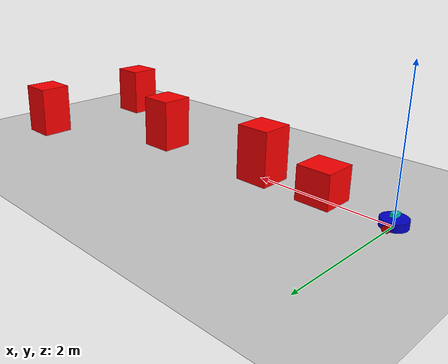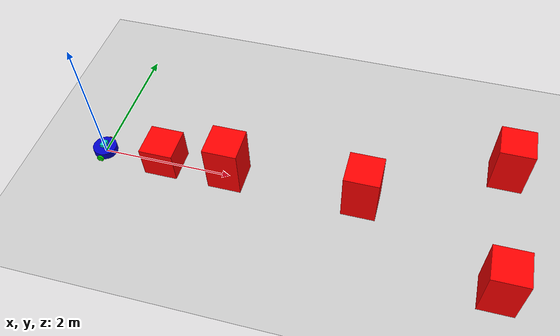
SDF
<?xml version="1.0" ?>
<sdf version="1.8">
	<world name="car_world">
		<physics name="1ms" type="gz-physics">
			<max_step_size>0.001</max_step_size>
			<real_time_factor>1.0</real_time_factor>
		</physics>

		<!-- Add Plugins -->
		<plugin name="gz::sim::systems::Physics" filename="gz-sim-physics-system"/>
		<plugin name="gz::sim::systems::SceneBroadcaster" filename="gz-sim-scene-broadcaster-system"/>
		<plugin filename="libgz-sim-sensors-system.so" name="gz::sim::systems::Sensors">
			<render_engine>ogre2</render_engine>
		</plugin>

		<light type="directional" name="sun">
			<cast_shadows>true</cast_shadows>
			<pose>0 0 10 0 0 0</pose>
			<diffuse>0.8 0.8 0.8 1</diffuse>
			<specular>0.2 0.2 0.2 1</specular>
			<attenuation>
				<range>1000</range>
				<constant>0.9</constant>
				<linear>0.01</linear>
				<quadratic>0.001</quadratic>
			</attenuation>
			<direction>-0.5 0.1 -0.9</direction>
		</light>

		<model name="ground_plane">
			<static>true</static>
			<link name="link">
				<collision name="collision">
					<geometry>
						<plane>
							<normal>0 0 1</normal>
						</plane>
					</geometry>
				</collision>
				<visual name="visual">
					<geometry>
						<plane>
							<normal>0 0 1</normal>
							<size>100 100</size>
						</plane>
					</geometry>
					<material>
						<ambient>0.8 0.8 0.8 1</ambient>
						<diffuse>0.8 0.8 0.8 1</diffuse>
						<specular>0.8 0.8 0.8 1</specular>
					</material>
				</visual>
			</link>
		</model>
		<model name='test_box'>
  <pose>1 0 0.25 0 0 0</pose>
  <link name='link'>
    <collision name='collision'>
      <geometry>
        <box><size>0.5 0.5 0.5</size></box>
      </geometry>
    </collision>
    <visual name='visual'>
      <geometry>
        <box><size>0.5 0.5 0.5</size></box>
      </geometry>
      <material>
        <ambient>1 0 0 1</ambient>
      </material>
    </visual>
  </link>
</model>
<model name="obstacle1">
  <pose>2 0 0.3 0 0 0</pose>
  <link name="link">
    <collision name="collision">
      <geometry><box><size>0.5 0.5 1</size></box></geometry>
    </collision>
    <visual name="visual">
      <geometry><box><size>0.5 0.5 1</size></box></geometry>
      <material><ambient>1 0 0 1</ambient></material>
    </visual>
  </link>
</model>

<model name="obstacle2">
  <pose>4 0 0.3 0 0 0</pose>
  <link name="link">
    <collision name="collision">
      <geometry><box><size>0.5 0.5 1</size></box></geometry>
    </collision>
    <visual name="visual">
      <geometry><box><size>0.5 0.5 1</size></box></geometry>
      <material><ambient>1 0 0 1</ambient></material>
    </visual>
  </link>
</model>

<model name="obstacle3">
  <pose>6 1 0.3 0 0 0</pose>
  <link name="link">
    <collision name="collision">
      <geometry><box><size>0.5 0.5 1</size></box></geometry>
    </collision>
    <visual name="visual">
      <geometry><box><size>0.5 0.5 1</size></box></geometry>
      <material><ambient>1 0 0 1</ambient></material>
    </visual>
  </link>
</model>

<model name="obstacle4">
  <pose>6 -1 0.3 0 0 0</pose>
  <link name="link">
    <collision name="collision">
      <geometry><box><size>0.5 0.5 1</size></box></geometry>
    </collision>
    <visual name="visual">
      <geometry><box><size>0.5 0.5 1</size></box></geometry>
      <material><ambient>1 0 0 1</ambient></material>
    </visual>
  </link>
</model>

		<!-- Use include tag to include the qbot model from the description package -->
		<include>
			<uri>/home/senadi/Desktop/final-project-self-name/ros_project_ws/src/qbot_description/sdf/qbot.sdf</uri>
			<pose>0 0 0 0 0 0</pose>
			<name>qbot</name>
		</include>

	</world>
</sdf>

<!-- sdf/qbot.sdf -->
<sdf version="1.8">
    <model name='qbot' canonical_link='base_link'>

        <!-- ROS2 Control Plugin -->
<plugin name="gz_ros2_control::GazeboSimROS2ControlPlugin" filename="libgz_ros2_control-system.so">

    <parameters>/home/senadi/Desktop/lab-06-SenadiF/CS3340-Workspace/src/qbot_description/config/qbot_controllers.yaml</parameters>

  <ros2_control name="qbot_system" type="system">

    <hardware>
      <plugin>gz_ros2_control/GazeboSimSystem</plugin>
    </hardware>

<joint name="wheel_left_joint">
            <command_interface name="velocity">
                <param name="min">-10</param>
                <param name="max">10</param>
            </command_interface>
            <state_interface name="position"/>
            <state_interface name="velocity"/>
        </joint>

        <joint name="wheel_right_joint">
            <command_interface name="velocity">
                <param name="min">-10</param>
                <param name="max">10</param>
            </command_interface>
            <state_interface name="position"/>
            <state_interface name="velocity"/>
        </joint>
</ros2_control>

</plugin>

  <pose>0 0 0 0 0 0</pose>

        <!-- Base -->
        <link name='base_link'>
            <pose>0 0 0.05949 0 0 0</pose>
            <inertial>
                <!-- TODO: Add mass-->
                <mass>2.4</mass>
                <inertia>
                    <ixx>0.019995</ixx>
                    <ixy>0</ixy>
                    <ixz>0</ixz>
                    <iyy>0.019995</iyy>
                    <iyz>0</iyz>
                    <izz>0.03675</izz>
                </inertia>
            </inertial>
            <visual name='base_visual'>
                <!-- TODO: Add geometry-->
                <geometry>
                    <cylinder>
                        <radius>0.178</radius>
                        <length>0.10938</length>
                    </cylinder>
                </geometry>
                <material>
                    <ambient>0.0 0.0 0.8 1</ambient>
                    <diffuse>0.0 0.0 0.8 1</diffuse>
                    <specular>1 1 1 1</specular>
                </material>
            </visual>
            <!-- TODO: Add collision geometry-->
            <collision name='base_collision'>
                <geometry>
                    <cylinder>
                        <radius>0.178</radius>
                        <length>0.10938</length>
                    </cylinder>
                </geometry>
            </collision>
        </link>

        <!-- Left wheel -->
        <link name='wheel_left_link'>
            <pose relative_to='base_link'>0 0.193 -0.0245 -1.57079632679 0 0</pose>
            <inertial>
                <!-- TODO: Add mass-->
                <mass>0.01</mass>
                <inertia>
                    <ixx>0.001</ixx>
                    <ixy>0</ixy>
                    <ixz>0</ixz>
                    <iyy>0.001</iyy>
                    <iyz>0</iyz>
                    <izz>0.001</izz>
                </inertia>
            </inertial>
            <visual name='wheel_left_visual'>
                <!-- TODO: Add geometry-->
                <geometry>
                    <cylinder>
                        <radius>0.05</radius>
                        <length>0.03</length>
                    </cylinder>
                </geometry>
                <material>
                    <ambient>0.8 0.0 0.0 1</ambient>
                    <diffuse>0.8 0.0 0.0 1</diffuse>
                    <specular>1 1 1 1</specular>
                </material>
            </visual>
            <!-- TODO: Add collision geometry-->
            <collision name='wheel_left_collision'>
                <geometry>
                    <cylinder>
                        <radius>0.05</radius>
                        <length>0.03</length>
                    </cylinder>
                </geometry>
            </collision>
        </link>

        <!-- Right wheel -->
        <link name='wheel_right_link'>
            <pose relative_to='base_link'>0 -0.193 -0.0245 -1.57079632679 0 0</pose>
            <inertial>
                <!-- TODO: Add mass-->
                <mass>0.01</mass>
                <inertia>
                    <ixx>0.001</ixx>
                    <ixy>0</ixy>
                    <ixz>0</ixz>
                    <iyy>0.001</iyy>
                    <iyz>0</iyz>
                    <izz>0.001</izz>
                </inertia>
            </inertial>
            <visual name='wheel_right_visual'>
                <!-- TODO: Add geometry-->
                <geometry>
                    <cylinder>
                        <radius>0.05</radius>
                        <length>0.03</length>
                    </cylinder>
                </geometry>
                <material>
                    <ambient>0.0 0.8 0.0 1</ambient>
                    <diffuse>0.0 0.8 0.0 1</diffuse>
                    <specular>1 1 1 1</specular>
                </material>
            </visual>
            <!-- TODO: Add collision geometry-->
            <collision name='wheel_right_collision'>
                <geometry>
                    <cylinder>
                        <radius>0.05</radius>
                        <length>0.03</length>
                    </cylinder>
                </geometry>
            </collision>
        </link>

        <!-- Front caster -->
        <link name='caster_front_link'>
            <pose relative_to='base_link'>0.115 0 -0.0485 -1.57079632679 0 0</pose>
            <inertial>
                <!-- TODO: Add mass-->
                <mass>0.01</mass>
                <inertia>
                    <ixx>0.001</ixx>
                    <ixy>0</ixy>
                    <ixz>0</ixz>
                    <iyy>0.001</iyy>
                    <iyz>0</iyz>
                    <izz>0.001</izz>
                </inertia>
            </inertial>
            <visual name='caster_front_visual'>
                <!-- TODO: Add geometry-->
                <geometry>
                    <cylinder>
                        <radius>0.025</radius>
                        <length>0.03</length>
                    </cylinder>
                </geometry>
                <material>
                    <ambient>0.8 0.8 0.0 1</ambient>
                    <diffuse>0.8 0.8 0.0 1</diffuse>
                    <specular>1 1 1 1</specular>
                </material>
            </visual>
            <!-- TODO: Add collision geometry-->
            <collision name='caster_front_collision'>
                <geometry>
                    <cylinder>
                        <radius>0.025</radius>
                        <length>0.03</length>
                    </cylinder>
                </geometry>
            </collision>
        </link>

        <!-- Back caster -->
        <link name='caster_back_link'>
            <pose relative_to='base_link'>-0.135 0 -0.0485 -1.57079632679 0 0</pose>
            <inertial>
                <!-- TODO: Add mass-->
                <mass>0.01</mass>
                <inertia>
                    <ixx>0.001</ixx>
                    <ixy>0</ixy>
                    <ixz>0</ixz>
                    <iyy>0.001</iyy>
                    <iyz>0</iyz>
                    <izz>0.001</izz>
                </inertia>
            </inertial>
            <visual name='caster_back_visual'>
                <!-- TODO: Add geometry-->
                <geometry>
                    <cylinder>
                        <radius>0.025</radius>
                        <length>0.03</length>
                    </cylinder>
                </geometry>
                <material>
                    <ambient>0.8 0.0 0.8 1</ambient>
                    <diffuse>0.8 0.0 0.8 1</diffuse>
                    <specular>1 1 1 1</specular>
                </material>
            </visual>
            <!-- TODO: Add collision geometry-->
            <collision name='caster_back_collision'>
                <geometry>
                    <cylinder>
                        <radius>0.025</radius>
                        <length>0.03</length>
                    </cylinder>
                </geometry>
            </collision>
        </link>

        <!-- Sensor mount -->
        <link name='sensor_mount_link' >
            <pose relative_to='base_link'>0 0 0.1 0 0 0</pose>
            <inertial>
                <!-- TODO: Add mass-->
                <mass>0.001</mass>
                <inertia>
                    <ixx>0.0001</ixx>
                    <ixy>0</ixy>
                    <ixz>0</ixz>
                    <iyy>0.000001</iyy>
                    <iyz>0</iyz>
                    <izz>0.0001</izz>
                </inertia>
            </inertial>
            <visual name='sensor_mount_visual'>
                <!-- TODO: Add geometry-->
                <geometry>
                    <box>
                        <size>0.08 0.12 0.05</size>
                    </box>
                </geometry>
                <material>
                    <ambient>0.0 0.8 0.8 1</ambient>
                    <diffuse>0.0 0.8 0.8 1</diffuse>
                    <specular>1 1 1 1</specular>
                </material>
            </visual>
            <!-- TODO: Add collision geometry-->
            <collision name='sensor_mount_collision'>
                <geometry>
                    <box>
                        <size>0.08 0.12 0.05</size>
                    </box>
                </geometry>
            </collision>

            <!-- LIDAR -->
            <sensor name='lidar' type='gpu_lidar'>
                <topic>lidar</topic>
                 <gz_frame_id>sensor_mount_link</gz_frame_id>
                <update_rate>10</update_rate>
                <ray>
                    <scan>
                        <horizontal>
                            <samples>360</samples>
                            <resolution>1</resolution>
                            <min_angle>-3.14159</min_angle>
                            <max_angle>3.14159</max_angle>
                        </horizontal>
                    </scan>
                    <range>
                        <min>0.12</min>
                        <max>10.0</max>
                        <resolution>0.01</resolution>
                    </range>
                    <noise>
                        <type>gaussian</type>
                        <mean>0.0</mean>
                        <stddev>0.01</stddev>
                    </noise>
                </ray>
                <always_on>1</always_on>
                <visualize>true</visualize>
            </sensor>
        </link>
         <!-- CAMERA -->
 <link name="camera_link">
   <sensor name="rgb_camera" type="camera">
     <camera>
       <horizontal_fov>1.047</horizontal_fov>
       <image>
         <width>640</width>
         <height>480</height>
       </image>
       <clip>
         <near>0.1</near>
         <far>100</far>
       </clip>
     </camera>
     <always_on>1</always_on>
     <update_rate>30</update_rate>

     <plugin name="camera_plugin"
             filename="gz_ros2_camera_system"/>
   </sensor>
 </link>
 <!-- IMU -->
 <link name="imu_link">
   <sensor name="imu_sensor" type="imu">
     <always_on>1</always_on>
     <update_rate>100</update_rate>

     <plugin name="imu_plugin"
             filename="gz_ros2_imu_system"/>
   </sensor>
 </link>
        <!-- Wheel Joints -->
        <joint name='wheel_left_joint' type='revolute'>
            <parent>base_link</parent>
            <child>wheel_left_link</child>
            <axis>
                <xyz>0 0 1</xyz>
                <limit>
                    <lower>-1.79769e+308</lower>
                    <upper>1.79769e+308</upper>
                </limit>
            </axis>
        </joint>

        <joint name='wheel_right_joint' type='revolute'>
            <parent>base_link</parent>
            <child>wheel_right_link</child>
            <axis>
                <xyz>0 0 1</xyz>
                <limit>
                    <lower>-1.79769e+308</lower>
                    <upper>1.79769e+308</upper>
                </limit>
            </axis>
        </joint>

        <!-- Castor Joints -->
        <joint name='caster_front_joint' type='fixed'>
            <parent>base_link</parent>
            <child>caster_front_link</child>
        </joint>

        <joint name='caster_back_joint' type='fixed'>
            <parent>base_link</parent>
            <child>caster_back_link</child>
        </joint>

        <!-- Other Joints -->
        <joint name='sensor_mount_joint' type='fixed'>
            <parent>base_link</parent>
            <child>sensor_mount_link</child>

        </joint>
         <joint name="camera_joint" type="fixed">
   <parent>sensor_mount_link</parent>
   <child>camera_link</child>
   <pose>0 0 0.05 0 0 0</pose>
 </joint>
 <joint name="imu_joint" type="fixed">
   <parent>base_link</parent>
   <child>imu_link</child>
   <pose>0 0 0.1 0 0 0</pose>
 </joint>
    </model>
</sdf>
